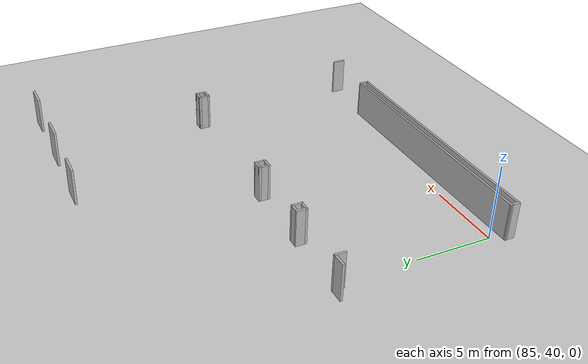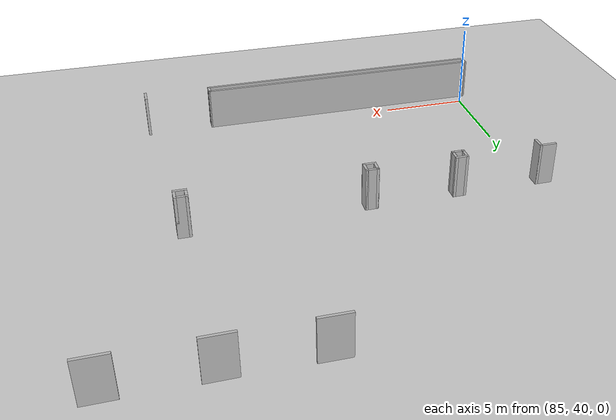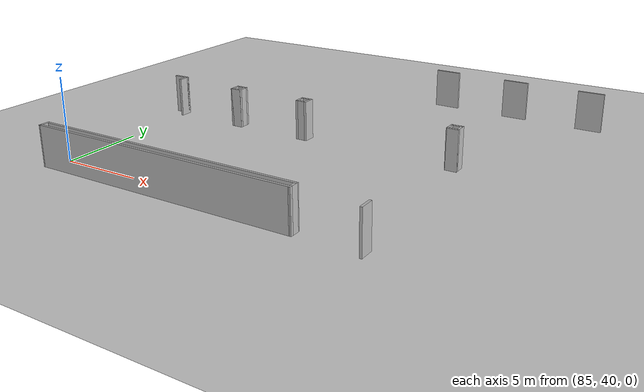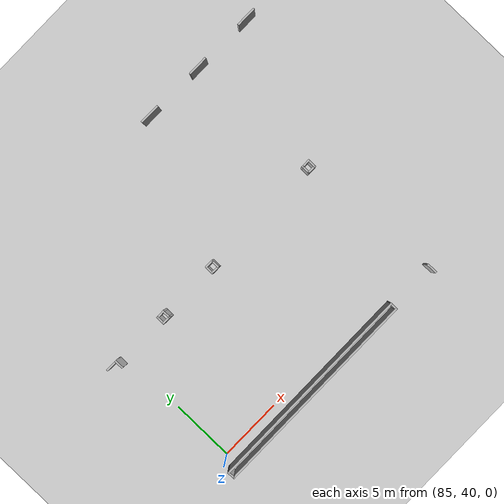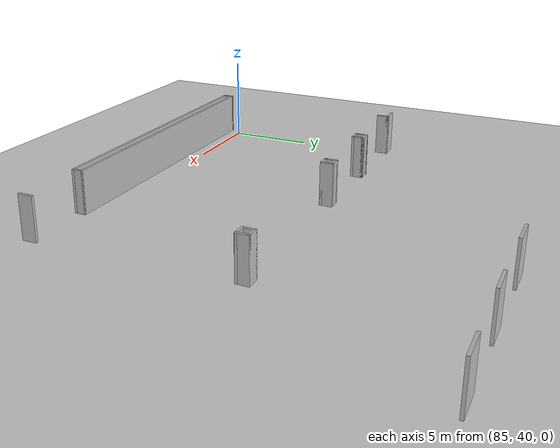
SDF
<sdf version="1.6">
 <world name="default">
  <model name="ground_plane">
   <static>1</static>
   <link name="link">
    <collision name="collision">
     <geometry><plane><normal>0 0 1</normal><size>200 100</size></plane></geometry>
     <surface><friction><ode><mu>100</mu><mu2>50</mu2></ode></friction></surface>
    </collision>
    <visual name="visual">
     <cast_shadows>0</cast_shadows>
     <geometry><plane><normal>0 0 1</normal><size>200 100</size></plane></geometry>
     <material>
      <script><uri>file://media/materials/scripts/gazebo.material</uri><name>Gazebo/Grey</name></script>
     </material>
    </visual>
   </link>
  </model>
  <model name="vgke_production">
   <link name="Wall_155">
    <pose>6.6402 -8.55667 0 0 0 -1.5708</pose>
    <visual name="Wall_155_Visual">
     <pose>0 0 1.25 0 -0 0</pose>
     <geometry><box><size>0.852564 0.15 2.5</size></box></geometry>
    </visual>
    <collision name="Wall_155_Collision">
     <pose>0 0 1.25 0 -0 0</pose>
     <geometry><box><size>0.852564 0.15 2.5</size></box></geometry>
    </collision>
    <inertial>
     <inertia><ixx>1</ixx><ixy>0</ixy><ixz>0</ixz><iyy>1</iyy><iyz>0</iyz><izz>1</izz></inertia>
     <mass>1</mass>
    </inertial>
   </link>
   <link name="Wall_383">
    <pose>0.562996 13.7879 0 0 -0 3.12872</pose>
    <visual name="Wall_383_Visual">
     <pose>0 0 1.25 0 -0 0</pose>
     <geometry><box><size>1.64585 0.15 2.5</size></box></geometry>
    </visual>
    <collision name="Wall_383_Collision">
     <pose>0 0 1.25 0 -0 0</pose>
     <geometry><box><size>1.64585 0.15 2.5</size></box></geometry>
    </collision>
    <inertial>
     <inertia><ixx>1</ixx><ixy>0</ixy><ixz>0</ixz><iyy>1</iyy><iyz>0</iyz><izz>1</izz></inertia>
     <mass>1</mass>
    </inertial>
   </link>
   <link name="Wall_386">
    <pose>5.45292 13.698 0 0 0 -0.000267</pose>
    <visual name="Wall_386_Visual">
     <pose>0 0 1.25 0 -0 0</pose>
     <geometry><box><size>1.63487 0.15 2.5</size></box></geometry>
    </visual>
    <collision name="Wall_386_Collision">
     <pose>0 0 1.25 0 -0 0</pose>
     <geometry><box><size>1.63487 0.15 2.5</size></box></geometry>
    </collision>
    <inertial>
     <inertia><ixx>1</ixx><ixy>0</ixy><ixz>0</ixz><iyy>1</iyy><iyz>0</iyz><izz>1</izz></inertia>
     <mass>1</mass>
    </inertial>
   </link>
   <link name="Wall_391">
    <pose>10.4186 13.6456 0 0 -0 0.000715</pose>
    <visual name="Wall_391_Visual">
     <pose>0 0 1.25 0 -0 0</pose>
     <geometry><box><size>1.64243 0.15 2.5</size></box></geometry>
    </visual>
    <collision name="Wall_391_Collision">
     <pose>0 0 1.25 0 -0 0</pose>
     <geometry><box><size>1.64243 0.15 2.5</size></box></geometry>
    </collision>
    <inertial>
     <inertia><ixx>1</ixx><ixy>0</ixy><ixz>0</ixz><iyy>1</iyy><iyz>0</iyz><izz>1</izz></inertia>
     <mass>1</mass>
    </inertial>
   </link>
   <link name="Wall_489">
    <pose>5.78142 3.22209 0 0 -0 0</pose>
    <visual name="Wall_489_Visual">
     <pose>0 0 1.25 0 -0 0</pose>
     <geometry><box><size>0.75 0.15 2.5</size></box></geometry>
    </visual>
    <collision name="Wall_489_Collision">
     <pose>0 0 1.25 0 -0 0</pose>
     <geometry><box><size>0.75 0.15 2.5</size></box></geometry>
    </collision>
    <inertial>
     <inertia><ixx>1</ixx><ixy>0</ixy><ixz>0</ixz><iyy>1</iyy><iyz>0</iyz><izz>1</izz></inertia>
     <mass>1</mass>
    </inertial>
   </link>
   <link name="Wall_490">
    <pose>6.08142 2.92209 0 0 0 -1.5708</pose>
    <visual name="Wall_490_Visual">
     <pose>0 0 1.25 0 -0 0</pose>
     <geometry><box><size>0.75 0.15 2.5</size></box></geometry>
    </visual>
    <collision name="Wall_490_Collision">
     <pose>0 0 1.25 0 -0 0</pose>
     <geometry><box><size>0.75 0.15 2.5</size></box></geometry>
    </collision>
    <inertial>
     <inertia><ixx>1</ixx><ixy>0</ixy><ixz>0</ixz><iyy>1</iyy><iyz>0</iyz><izz>1</izz></inertia>
     <mass>1</mass>
    </inertial>
   </link>
   <link name="Wall_493">
    <pose>5.78142 2.62209 0 0 -0 3.14159</pose>
    <visual name="Wall_493_Visual">
     <pose>0 0 1.25 0 -0 0</pose>
     <geometry><box><size>0.75 0.15 2.5</size></box></geometry>
    </visual>
    <collision name="Wall_493_Collision">
     <pose>0 0 1.25 0 -0 0</pose>
     <geometry><box><size>0.75 0.15 2.5</size></box></geometry>
    </collision>
    <inertial>
     <inertia><ixx>1</ixx><ixy>0</ixy><ixz>0</ixz><iyy>1</iyy><iyz>0</iyz><izz>1</izz></inertia>
     <mass>1</mass>
    </inertial>
   </link>
   <link name="Wall_494">
    <pose>5.48142 2.92209 0 0 -0 1.5708</pose>
    <visual name="Wall_494_Visual">
     <pose>0 0 1.25 0 -0 0</pose>
     <geometry><box><size>0.75 0.15 2.5</size></box></geometry>
    </visual>
    <collision name="Wall_494_Collision">
     <pose>0 0 1.25 0 -0 0</pose>
     <geometry><box><size>0.75 0.15 2.5</size></box></geometry>
    </collision>
    <inertial>
     <inertia><ixx>1</ixx><ixy>0</ixy><ixz>0</ixz><iyy>1</iyy><iyz>0</iyz><izz>1</izz></inertia>
     <mass>1</mass>
    </inertial>
   </link>
   <link name="Wall_498">
    <pose>-13.9492 2.89941 0 0 -0 1.5708</pose>
    <visual name="Wall_498_Visual">
     <pose>0 0 1.25 0 -0 0</pose>
     <geometry><box><size>0.75 0.15 2.5</size></box></geometry>
    </visual>
    <collision name="Wall_498_Collision">
     <pose>0 0 1.25 0 -0 0</pose>
     <geometry><box><size>0.75 0.15 2.5</size></box></geometry>
    </collision>
    <inertial>
     <inertia><ixx>1</ixx><ixy>0</ixy><ixz>0</ixz><iyy>1</iyy><iyz>0</iyz><izz>1</izz></inertia>
     <mass>1</mass>
    </inertial>
   </link>
   <link name="Wall_499">
    <pose>-14.3742 3.19941 0 0 -0 3.14159</pose>
    <visual name="Wall_499_Visual">
     <pose>0 0 1.25 0 -0 0</pose>
     <geometry><box><size>1 0.15 2.5</size></box></geometry>
    </visual>
    <collision name="Wall_499_Collision">
     <pose>0 0 1.25 0 -0 0</pose>
     <geometry><box><size>1 0.15 2.5</size></box></geometry>
    </collision>
    <inertial>
     <inertia><ixx>1</ixx><ixy>0</ixy><ixz>0</ixz><iyy>1</iyy><iyz>0</iyz><izz>1</izz></inertia>
     <mass>1</mass>
    </inertial>
   </link>
   <link name="Wall_501">
    <pose>-9.28555 3.2329 0 0 -0 0</pose>
    <visual name="Wall_501_Visual">
     <pose>0 0 1.25 0 -0 0</pose>
     <geometry><box><size>0.75 0.15 2.5</size></box></geometry>
    </visual>
    <collision name="Wall_501_Collision">
     <pose>0 0 1.25 0 -0 0</pose>
     <geometry><box><size>0.75 0.15 2.5</size></box></geometry>
    </collision>
    <inertial>
     <inertia><ixx>1</ixx><ixy>0</ixy><ixz>0</ixz><iyy>1</iyy><iyz>0</iyz><izz>1</izz></inertia>
     <mass>1</mass>
    </inertial>
   </link>
   <link name="Wall_502">
    <pose>-8.98555 2.9329 0 0 0 -1.5708</pose>
    <visual name="Wall_502_Visual">
     <pose>0 0 1.25 0 -0 0</pose>
     <geometry><box><size>0.75 0.15 2.5</size></box></geometry>
    </visual>
    <collision name="Wall_502_Collision">
     <pose>0 0 1.25 0 -0 0</pose>
     <geometry><box><size>0.75 0.15 2.5</size></box></geometry>
    </collision>
    <inertial>
     <inertia><ixx>1</ixx><ixy>0</ixy><ixz>0</ixz><iyy>1</iyy><iyz>0</iyz><izz>1</izz></inertia>
     <mass>1</mass>
    </inertial>
   </link>
   <link name="Wall_503">
    <pose>-9.28555 2.6329 0 0 -0 3.14159</pose>
    <visual name="Wall_503_Visual">
     <pose>0 0 1.25 0 -0 0</pose>
     <geometry><box><size>0.75 0.15 2.5</size></box></geometry>
    </visual>
    <collision name="Wall_503_Collision">
     <pose>0 0 1.25 0 -0 0</pose>
     <geometry><box><size>0.75 0.15 2.5</size></box></geometry>
    </collision>
    <inertial>
     <inertia><ixx>1</ixx><ixy>0</ixy><ixz>0</ixz><iyy>1</iyy><iyz>0</iyz><izz>1</izz></inertia>
     <mass>1</mass>
    </inertial>
   </link>
   <link name="Wall_504">
    <pose>-9.58555 2.9329 0 0 -0 1.5708</pose>
    <visual name="Wall_504_Visual">
     <pose>0 0 1.25 0 -0 0</pose>
     <geometry><box><size>0.75 0.15 2.5</size></box></geometry>
    </visual>
    <collision name="Wall_504_Collision">
     <pose>0 0 1.25 0 -0 0</pose>
     <geometry><box><size>0.75 0.15 2.5</size></box></geometry>
    </collision>
    <inertial>
     <inertia><ixx>1</ixx><ixy>0</ixy><ixz>0</ixz><iyy>1</iyy><iyz>0</iyz><izz>1</izz></inertia>
     <mass>1</mass>
    </inertial>
   </link>
   <link name="Wall_506">
    <pose>-4.24491 3.22173 0 0 -0 0</pose>
    <visual name="Wall_506_Visual">
     <pose>0 0 1.25 0 -0 0</pose>
     <geometry><box><size>0.75 0.15 2.5</size></box></geometry>
    </visual>
    <collision name="Wall_506_Collision">
     <pose>0 0 1.25 0 -0 0</pose>
     <geometry><box><size>0.75 0.15 2.5</size></box></geometry>
    </collision>
    <inertial>
     <inertia><ixx>1</ixx><ixy>0</ixy><ixz>0</ixz><iyy>1</iyy><iyz>0</iyz><izz>1</izz></inertia>
     <mass>1</mass>
    </inertial>
   </link>
   <link name="Wall_507">
    <pose>-3.94491 2.92173 0 0 0 -1.5708</pose>
    <visual name="Wall_507_Visual">
     <pose>0 0 1.25 0 -0 0</pose>
     <geometry><box><size>0.75 0.15 2.5</size></box></geometry>
    </visual>
    <collision name="Wall_507_Collision">
     <pose>0 0 1.25 0 -0 0</pose>
     <geometry><box><size>0.75 0.15 2.5</size></box></geometry>
    </collision>
    <inertial>
     <inertia><ixx>1</ixx><ixy>0</ixy><ixz>0</ixz><iyy>1</iyy><iyz>0</iyz><izz>1</izz></inertia>
     <mass>1</mass>
    </inertial>
   </link>
   <link name="Wall_508">
    <pose>-4.24491 2.62174 0 0 -0 3.14159</pose>
    <visual name="Wall_508_Visual">
     <pose>0 0 1.25 0 -0 0</pose>
     <geometry><box><size>0.75 0.15 2.5</size></box></geometry>
    </visual>
    <collision name="Wall_508_Collision">
     <pose>0 0 1.25 0 -0 0</pose>
     <geometry><box><size>0.75 0.15 2.5</size></box></geometry>
    </collision>
    <inertial>
     <inertia><ixx>1</ixx><ixy>0</ixy><ixz>0</ixz><iyy>1</iyy><iyz>0</iyz><izz>1</izz></inertia>
     <mass>1</mass>
    </inertial>
   </link>
   <link name="Wall_509">
    <pose>-4.54491 2.92173 0 0 -0 1.5708</pose>
    <visual name="Wall_509_Visual">
     <pose>0 0 1.25 0 -0 0</pose>
     <geometry><box><size>0.75 0.15 2.5</size></box></geometry>
    </visual>
    <collision name="Wall_509_Collision">
     <pose>0 0 1.25 0 -0 0</pose>
     <geometry><box><size>0.75 0.15 2.5</size></box></geometry>
    </collision>
    <inertial>
     <inertia><ixx>1</ixx><ixy>0</ixy><ixz>0</ixz><iyy>1</iyy><iyz>0</iyz><izz>1</izz></inertia>
     <mass>1</mass>
    </inertial>
   </link>
   <link name="Wall_608">
    <pose>2.76041 -8.47078 0 0 0 -1.56789</pose>
    <visual name="Wall_608_Visual">
     <pose>0 0 1.25 0 -0 0</pose>
     <geometry><box><size>0.66655 0.15 2.5</size></box></geometry>
    </visual>
    <collision name="Wall_608_Collision">
     <pose>0 0 1.25 0 -0 0</pose>
     <geometry><box><size>0.66655 0.15 2.5</size></box></geometry>
    </collision>
    <inertial>
     <inertia><ixx>1</ixx><ixy>0</ixy><ixz>0</ixz><iyy>1</iyy><iyz>0</iyz><izz>1</izz></inertia>
     <mass>1</mass>
    </inertial>
   </link>
   <link name="Wall_610">
    <pose>-5.66077 -8.72905 0 0 -0 3.14159</pose>
    <visual name="Wall_610_Visual">
     <pose>0 0 1.25 0 -0 0</pose>
     <geometry><box><size>17 0.15 2.5</size></box></geometry>
    </visual>
    <collision name="Wall_610_Collision">
     <pose>0 0 1.25 0 -0 0</pose>
     <geometry><box><size>17 0.15 2.5</size></box></geometry>
    </collision>
    <inertial>
     <inertia><ixx>1</ixx><ixy>0</ixy><ixz>0</ixz><iyy>1</iyy><iyz>0</iyz><izz>1</izz></inertia>
     <mass>1</mass>
    </inertial>
   </link>
   <link name="Wall_613">
    <pose>-14.0896 -8.47078 0 0 -0 1.5737</pose>
    <visual name="Wall_613_Visual">
     <pose>0 0 1.25 0 -0 0</pose>
     <geometry><box><size>0.66655 0.15 2.5</size></box></geometry>
    </visual>
    <collision name="Wall_613_Collision">
     <pose>0 0 1.25 0 -0 0</pose>
     <geometry><box><size>0.66655 0.15 2.5</size></box></geometry>
    </collision>
    <inertial>
     <inertia><ixx>1</ixx><ixy>0</ixy><ixz>0</ixz><iyy>1</iyy><iyz>0</iyz><izz>1</izz></inertia>
     <mass>1</mass>
    </inertial>
   </link>
   <link name="Wall_614">
    <pose>-5.66535 -8.2125 0 0 -0 0</pose>
    <visual name="Wall_614_Visual">
     <pose>0 0 1.25 0 -0 0</pose>
     <geometry><box><size>17 0.15 2.5</size></box></geometry>
    </visual>
    <collision name="Wall_614_Collision">
     <pose>0 0 1.25 0 -0 0</pose>
     <geometry><box><size>17 0.15 2.5</size></box></geometry>
    </collision>
    <inertial>
     <inertia><ixx>1</ixx><ixy>0</ixy><ixz>0</ixz><iyy>1</iyy><iyz>0</iyz><izz>1</izz></inertia>
     <mass>1</mass>
    </inertial>
   </link>
   <pose>98.6 47.426 0.01 0 0 0</pose>
  </model>
 </world>
</sdf>
